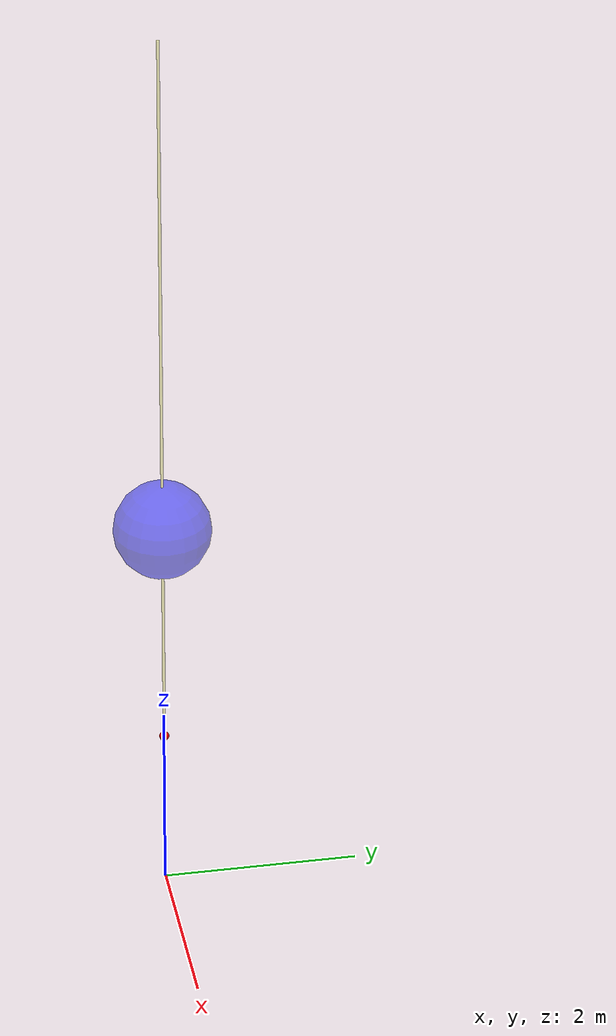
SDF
<?xml version="1.0" ?>
<sdf version="1.4">
  <model name="stick">
    <static>true</static>  <!-- 设置模型为静态 -->
    <pose>0 0 1.75 0 0 0</pose>
    <link name="link">

      <!-- 起始点为红色小球 -->
      <visual name="start_ball">
        <pose>0 0 0 0 0 0</pose>
        <geometry>
          <sphere>
            <radius>0.05</radius>
          </sphere>
        </geometry>
        <material>
          <ambient>1 0 0 1</ambient> <!-- 红色 -->
        </material>
      </visual>

      <!-- 主体圆柱 -->
      <visual name="cylinder">
        <pose>0 0 4 0 0 0</pose>
        <geometry>
          <cylinder>
            <radius>0.015</radius>
            <length>8</length>
          </cylinder>
        </geometry>
        <material>
          <ambient>1 1 0.5 0.5</ambient> <!-- 黄色 -->
          <diffuse>1 1 0.5 0.5</diffuse>
        </material>
      </visual>

      <!-- 末端为蓝色小球 -->
        <visual name="end_ball">
          <pose>0 0 2.5 0 0 0</pose>
          <geometry>
            <sphere>
              <radius>0.5</radius>
            </sphere>
          </geometry>
          <material>
            <ambient>0 0 1 0.5</ambient>
            <diffuse>0 0 1 0.5</diffuse>
          </material>
        </visual>

    </link>
  </model>
</sdf>
